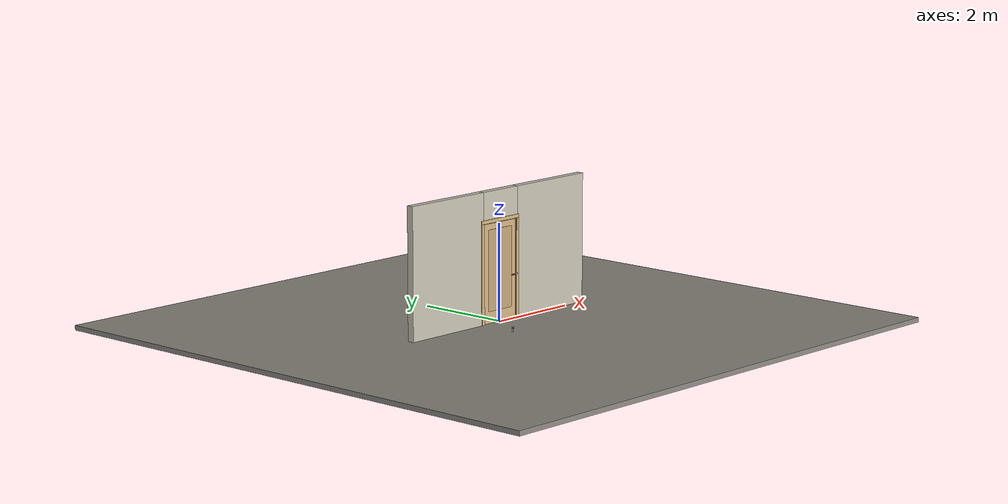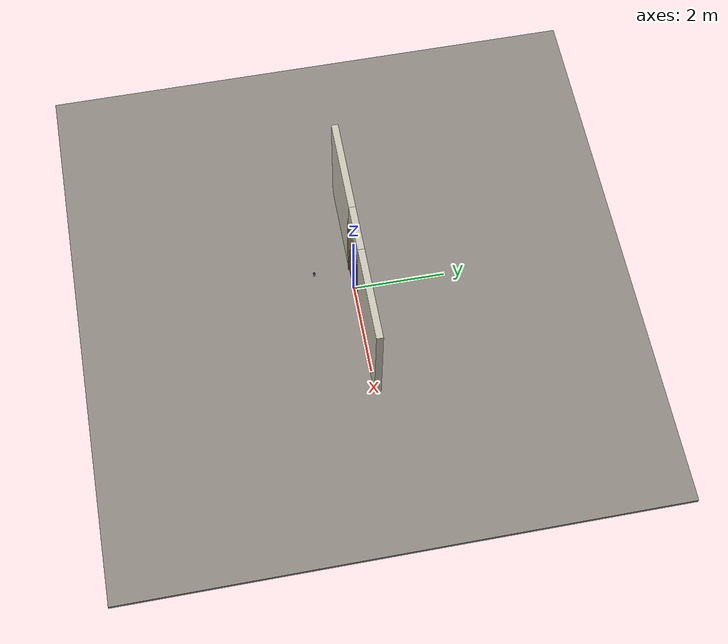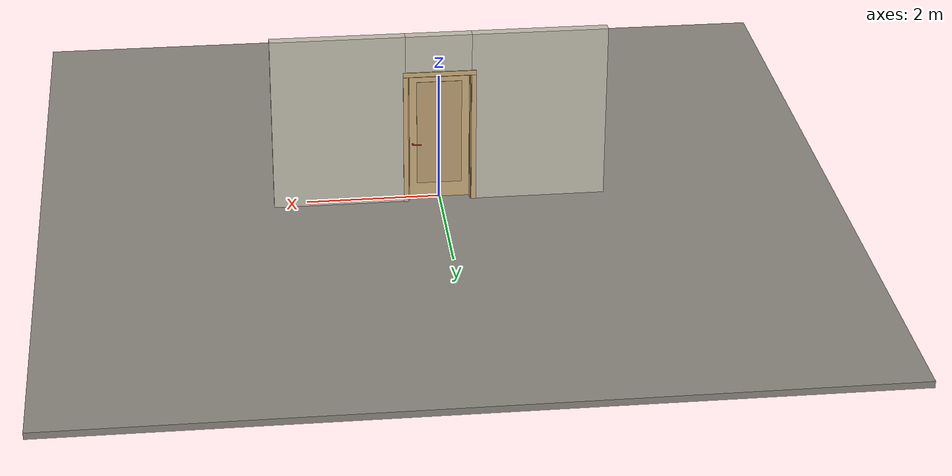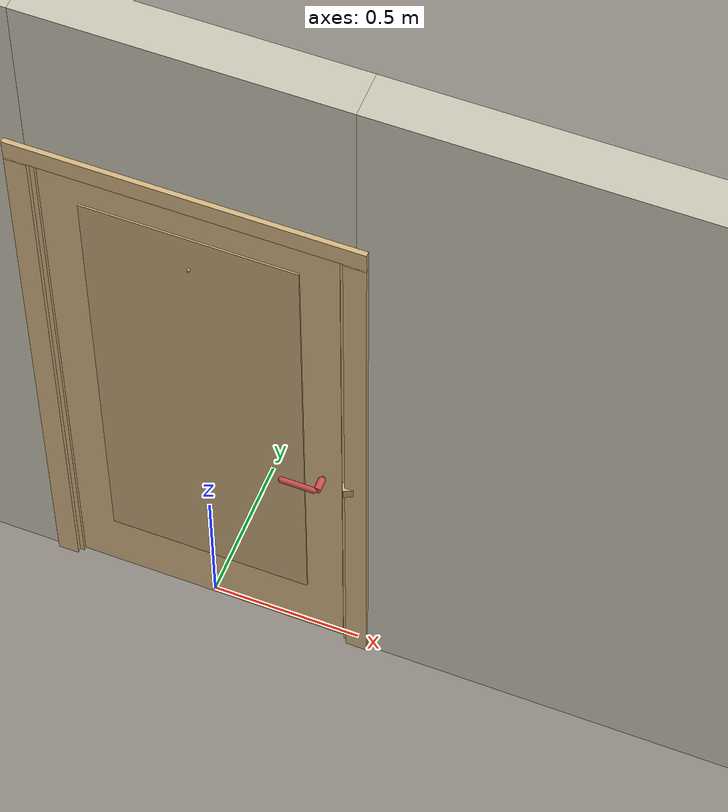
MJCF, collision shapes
<?xml version="1.0" ?>
<mujoco model="db0082_swing_single_full">
  <compiler angle="radian" meshdir="../../hardware" texturedir="../../textures" autolimits="true" inertiafromgeom="false"/>
  <option timestep="0.002" integrator="implicitfast" cone="elliptic" impratio="10" noslip_iterations="3">
    <flag multiccd="enable"/>
  </option>
  <size memory="16M"/>
  <default>
    <geom condim="4" solref="0.005 1" solimp="0.95 0.99 0.001"/>
    <joint solreflimit="0.005 1" solimplimit="0.95 0.99 0.001"/>
    <tendon solreflimit="0.005 1"/>
    <equality solref="0.002 1"/>
  </default>
  <visual>
    <headlight ambient="0.4 0.4 0.4" diffuse="0.7 0.7 0.7" specular="0.2 0.2 0.2"/>
    <quality shadowsize="4096"/>
    <map znear="0.01" zfar="60"/>
  </visual>
  <asset>
    <mesh name="hinge_e3fd49fe13" file="hinge_e3fd49fe13.obj"/>
    <mesh name="hinge_jamb_e47eb19c39" file="hinge_jamb_e47eb19c39.obj"/>
    <mesh name="lever_9f02b544cf" file="lever_9f02b544cf.obj"/>
    <mesh name="wreath_86a3f1bf8b" file="wreath_86a3f1bf8b.obj"/>
    <material name="mat_floor" rgba="0.55 0.53 0.5 1" specular="0.2" shininess="0.15" reflectance="0"/>
    <material name="mat_wall" rgba="0.78 0.76 0.7 1" specular="0.2" shininess="0.1" reflectance="0"/>
    <material name="mat_leaf" rgba="0.82 0.7 0.5 1" specular="0.2" shininess="0.45" reflectance="0"/>
    <material name="mat_leaf_panel" rgba="0.754 0.644 0.46 1" specular="0.2" shininess="0.45" reflectance="0"/>
    <material name="mat_hinge" rgba="0.65 0.66 0.68 1" specular="0.74" shininess="0.5" reflectance="0.36"/>
    <material name="mat_op_brass_antique" rgba="0.55 0.42 0.22 1" specular="0.74" shininess="0.45" reflectance="0.36"/>
    <material name="mat_trim" rgba="0.85 0.66 0.3 1" specular="0.8" shininess="0.75" reflectance="0.4"/>
    <material name="mat_bolt" rgba="0.85 0.66 0.3 1" specular="0.8" shininess="0.75" reflectance="0.4"/>
    <material name="mat_frame" rgba="0.82 0.7 0.5 1" specular="0.2" shininess="0.45" reflectance="0"/>
    <material name="mat_wreath" rgba="0.12 0.3 0.12 1" specular="0.2" shininess="0.05" reflectance="0"/>
    <material name="mat_wreath_hook" rgba="0.85 0.66 0.3 1" specular="0.8" shininess="0.75" reflectance="0.4"/>
    <material name="mat_bumper_stop" rgba="0.08 0.08 0.08 1" specular="0.2" shininess="0.1" reflectance="0"/>
    <material name="mat_stop_base" rgba="0.9 0.9 0.92 1" specular="0.8" shininess="0.9" reflectance="0.4"/>
    <texture name="skybox" type="skybox" builtin="gradient" rgb1="0.6 0.7 0.85" rgb2="0.9 0.92 0.95" width="256" height="256"/>
  </asset>
  <worldbody>
    <light name="sun" pos="1.5 -2.5 4" dir="-0.3 0.5 -0.8" directional="true" diffuse="0.8 0.8 0.8" specular="0.3 0.3 0.3" castshadow="true"/>
    <light name="fill" pos="-1.5 2.5 3" dir="0.3 -0.5 -0.7" directional="true" diffuse="0.35 0.35 0.4" castshadow="false"/>
    <camera name="robot_view" pos="0 -2.494187 1.734312" xyaxes="1 0 0 0 0.26963 0.962964" fovy="52"/>
    <camera name="far_view" pos="0 2.590187 1.734312" xyaxes="-1 0 0 0 -0.26963 0.962964" fovy="52"/>
    <camera name="iso" pos="1.932062 -2.087438 2.141063" xyaxes="0.741536 0.670913 0 -0.242917 0.268487 0.932151" fovy="46"/>
    <camera name="detail_handle" pos="0.4765 -0.8725 1.194" xyaxes="0.97561 0.219512 0 -0.070934 0.315262 0.94635" fovy="38"/>
    <geom name="floor" type="box" size="6 6 0.05" pos="0 0 -0.05" material="mat_floor" group="0" contype="1" conaffinity="1" friction="0.8 0.005 0.0001" density="2400"/>
    <geom name="wall_left" type="box" size="1.01025 0.0725 1.35" pos="-1.48975 0.048 1.35" material="mat_wall" group="0" contype="1" conaffinity="1" friction="0.6 0.005 0.0001" density="800"/>
    <geom name="wall_right" type="box" size="0.99525 0.0725 1.35" pos="1.50475 0.048 1.35" material="mat_wall" group="0" contype="1" conaffinity="1" friction="0.6 0.005 0.0001" density="800"/>
    <geom name="wall_header" type="box" size="0.4945 0.0725 0.303" pos="0.015 0.048 2.397" material="mat_wall" group="0" contype="1" conaffinity="1" friction="0.6 0.005 0.0001" density="800"/>
    <geom name="hinge_0_jamb" type="mesh" mesh="hinge_jamb_e47eb19c39" pos="-0.4575 -0.0245 0.259" material="mat_hinge" group="1" contype="0" conaffinity="0" density="7850"/>
    <geom name="hinge_1_jamb" type="mesh" mesh="hinge_jamb_e47eb19c39" pos="-0.4575 -0.0245 1.025" material="mat_hinge" group="1" contype="0" conaffinity="0" density="7850"/>
    <geom name="hinge_2_jamb" type="mesh" mesh="hinge_jamb_e47eb19c39" pos="-0.4575 -0.0245 1.861" material="mat_hinge" group="1" contype="0" conaffinity="0" density="7850"/>
    <geom name="jamb_hinge" type="box" size="0.0095 0.0725 1.0225" pos="-0.47 0.048 1.0225" material="mat_frame" group="0" contype="1" conaffinity="1" friction="0.6 0.005 0.0001" density="400"/>
    <geom name="strike_914_wall_n" type="box" size="0.0245 0.056325 0.0167" pos="0.485 0.064175 0.914" material="mat_frame" group="0" contype="1" conaffinity="1" friction="0.6 0.005 0.0001" density="400"/>
    <geom name="strike_914_wall_p" type="box" size="0.0245 0.008 0.0167" pos="0.485 -0.01585 0.914" material="mat_frame" group="0" contype="1" conaffinity="1" friction="0.6 0.005 0.0001" density="400"/>
    <geom name="strike_914_ramp" type="box" size="0.0245 0.01649 0.0167" pos="0.489636 -0.028673 0.914" quat="0.977148 0 0 0.212558" material="mat_frame" group="0" contype="1" conaffinity="1" friction="0.12 0.005 0.0001" density="400"/>
    <geom name="strike_914_back" type="box" size="0.01615 0.00785 0.0167" pos="0.49335 0 0.914" material="mat_frame" group="0" contype="1" conaffinity="1" friction="0.6 0.005 0.0001" density="400"/>
    <geom name="jamb_strike_0" type="box" size="0.0245 0.0725 0.44865" pos="0.485 0.048 0.44865" material="mat_frame" group="0" contype="1" conaffinity="1" friction="0.6 0.005 0.0001" density="400"/>
    <geom name="jamb_strike_1" type="box" size="0.0245 0.0725 0.55715" pos="0.485 0.048 1.48785" material="mat_frame" group="0" contype="1" conaffinity="1" friction="0.6 0.005 0.0001" density="400"/>
    <geom name="jamb_head" type="box" size="0.4945 0.0725 0.0095" pos="0.015 0.048 2.0545" material="mat_frame" group="0" contype="1" conaffinity="1" friction="0.6 0.005 0.0001" density="400"/>
    <geom name="head_stud" type="box" size="0.4945 0.0725 0.015" pos="0.015 0.048 2.079" material="mat_wall" group="0" contype="1" conaffinity="1" friction="0.6 0.005 0.0001" density="500"/>
    <geom name="stop_hinge" type="box" size="0.0055 0.016 1.0225" pos="-0.455 0.034 1.0225" material="mat_frame" group="0" contype="1" conaffinity="1" friction="0.6 0.005 0.0001" density="400"/>
    <geom name="stop_strike" type="box" size="0.0055 0.016 1.0225" pos="0.455 0.034 1.0225" material="mat_frame" group="0" contype="1" conaffinity="1" friction="0.6 0.005 0.0001" density="400"/>
    <geom name="stop_head" type="box" size="0.4605 0.016 0.0055" pos="0 0.034 2.0395" material="mat_frame" group="0" contype="1" conaffinity="1" friction="0.6 0.005 0.0001" density="400"/>
    <geom name="casing_l_n" type="box" size="0.035 0.008 1.032" pos="-0.5095 -0.0325 1.0225" material="mat_frame" group="2" contype="0" conaffinity="0" density="400"/>
    <geom name="casing_r_n" type="box" size="0.035 0.008 1.032" pos="0.5095 -0.0325 1.0225" material="mat_frame" group="2" contype="0" conaffinity="0" density="400"/>
    <geom name="casing_h_n" type="box" size="0.5445 0.008 0.035" pos="0 -0.0325 2.094" material="mat_frame" group="2" contype="0" conaffinity="0" density="400"/>
    <geom name="casing_l_p" type="box" size="0.035 0.008 1.032" pos="-0.5095 0.1285 1.0225" material="mat_frame" group="2" contype="0" conaffinity="0" density="400"/>
    <geom name="casing_r_p" type="box" size="0.035 0.008 1.032" pos="0.5095 0.1285 1.0225" material="mat_frame" group="2" contype="0" conaffinity="0" density="400"/>
    <geom name="casing_h_p" type="box" size="0.5445 0.008 0.035" pos="0 0.1285 2.094" material="mat_frame" group="2" contype="0" conaffinity="0" density="400"/>
    <geom name="door_stop_base" type="cylinder" size="0.022 0.003" pos="-0.4735 -0.8014 0.003" material="mat_stop_base" group="0" contype="1" conaffinity="1" friction="0.6 0.005 0.0001" density="7850"/>
    <geom name="door_stop_post" type="cylinder" size="0.012 0.0245" pos="-0.4735 -0.8014 0.0305" material="mat_stop_base" group="0" contype="1" conaffinity="1" friction="0.6 0.005 0.0001" density="7850"/>
    <geom name="door_stop_bumper" type="cylinder" size="0.022 0.02" pos="-0.4735 -0.8014 0.075" material="mat_bumper_stop" group="0" contype="1" conaffinity="1" friction="0.6 0.005 0.0001" density="1100"/>
    <site name="approach_point" pos="0 -1.5 0" quat="1 0 0 0" size="0.05" rgba="0.2 0.9 0.2 0.5" group="4"/>
    <site name="goal_point" pos="0 1.5 0" quat="1 0 0 0" size="0.05" rgba="0.2 0.9 0.2 0.5" group="4"/>
    <site name="door_plane_center" pos="0 0 1.0225" quat="1 0 0 0" size="0.02" rgba="0.2 0.9 0.2 0.5" group="4"/>
    <body name="leaf" pos="-0.4605 0 0">
      <inertial pos="0.44957 -0.003953 1.055711" mass="27.689857" quat="0.498162 0.501916 -0.500861 0.499052" diaginertia="1.9535364 9.562471073 11.496996621"/>
      <joint name="leaf_hinge" type="hinge" axis="0 0 -1" pos="0.003 -0.0245 0" limited="true" range="0 1.570796" damping="2.25611" frictionloss="0.451082" stiffness="6.6" springref="-0.409091" armature="0.02"/>
      <geom name="leaf_slab" type="box" size="0.457 0.0175 1.016" pos="0.46 0 1.025" material="mat_leaf" group="0" contype="1" conaffinity="1" friction="0.35 0.005 0.0001" density="1"/>
      <geom name="leaf_panel_0_n" type="box" size="0.33646 0.003 0.83344" pos="0.46 -0.0205 1.08596" material="mat_leaf_panel" group="1" contype="0" conaffinity="0" density="1"/>
      <geom name="leaf_panel_0_p" type="box" size="0.33646 0.003 0.83344" pos="0.46 0.0205 1.08596" material="mat_leaf_panel" group="1" contype="0" conaffinity="0" density="1"/>
      <geom name="hinge_0" type="mesh" mesh="hinge_e3fd49fe13" pos="0.003 -0.0245 0.259" material="mat_hinge" group="1" contype="0" conaffinity="0" density="7850"/>
      <geom name="hinge_1" type="mesh" mesh="hinge_e3fd49fe13" pos="0.003 -0.0245 1.025" material="mat_hinge" group="1" contype="0" conaffinity="0" density="7850"/>
      <geom name="hinge_2" type="mesh" mesh="hinge_e3fd49fe13" pos="0.003 -0.0245 1.861" material="mat_hinge" group="1" contype="0" conaffinity="0" density="7850"/>
      <geom name="leaf_latch_bolt_faceplate" type="box" size="0.0006 0.01235 0.0267" pos="0.9164 0 0.914" material="mat_bolt" group="1" contype="0" conaffinity="0" density="8500"/>
      <geom name="wreath" type="mesh" mesh="wreath_86a3f1bf8b" pos="0.46 -0.0175 1.59396" quat="0.707107 0.707107 0 0" material="mat_wreath" group="2" contype="0" conaffinity="0" density="200"/>
      <geom name="wreath_hook" type="cylinder" size="0.004 0.008" pos="0.46 -0.0245 1.78196" quat="0.707107 -0.707107 0 0" material="mat_wreath_hook" group="2" contype="0" conaffinity="0" density="8500"/>
      <site name="leaf_edge_mid" pos="0.917 0 1.016" quat="1 0 0 0" size="0.02" rgba="0.2 0.9 0.2 0.5" group="4"/>
      <body name="leaf_handle" pos="0.857 0 0.914">
        <inertial pos="-0.028779 0 0" mass="0.970196" quat="0 0.707107 0.707107 0" diaginertia="0.001765339 0.003138972 0.004726252"/>
        <joint name="leaf_handle_hinge" type="hinge" axis="0 -1 0" limited="true" range="0 0.96" damping="0.20055" frictionloss="0.046" stiffness="0.8" springref="-0.577217" armature="0.01"/>
        <geom name="leaf_handle_spindle" type="cylinder" size="0.006 0.0255" pos="0 0 0" quat="0.707107 -0.707107 0 0" material="mat_op_brass_antique" group="1" contype="0" conaffinity="0" density="7850"/>
        <geom name="leaf_handle_lever_n" type="mesh" mesh="lever_9f02b544cf" pos="0 -0.0175 0" quat="0.707107 0.707107 0 0" material="mat_op_brass_antique" group="1" contype="0" conaffinity="0" density="3000"/>
        <geom name="leaf_handle_lever_col_n" type="capsule" size="0.0095 0.053" pos="-0.0625 -0.0725 0" quat="0.707107 0 -0.707107 0" material="mat_op_brass_antique" group="3" contype="1" conaffinity="1" rgba="0.8 0.3 0.3 0.25" friction="0.7 0.01 0.0001" density="3000"/>
        <geom name="leaf_handle_hub_col_n" type="cylinder" size="0.012 0.022" pos="0 -0.0475 0" quat="0.707107 -0.707107 0 0" material="mat_op_brass_antique" group="3" contype="1" conaffinity="1" rgba="0.8 0.3 0.3 0.25" friction="0.6 0.005 0.0001" density="3000"/>
        <geom name="leaf_handle_lever_p" type="mesh" mesh="lever_9f02b544cf" pos="0 0.0175 0" quat="-0.707107 0.707107 0 0" material="mat_op_brass_antique" group="1" contype="0" conaffinity="0" density="3000"/>
        <geom name="leaf_handle_lever_col_p" type="capsule" size="0.0095 0.053" pos="-0.0625 0.0725 0" quat="0.707107 0 -0.707107 0" material="mat_op_brass_antique" group="3" contype="1" conaffinity="1" rgba="0.8 0.3 0.3 0.25" friction="0.7 0.01 0.0001" density="3000"/>
        <geom name="leaf_handle_hub_col_p" type="cylinder" size="0.012 0.022" pos="0 0.0475 0" quat="0.707107 -0.707107 0 0" material="mat_op_brass_antique" group="3" contype="1" conaffinity="1" rgba="0.8 0.3 0.3 0.25" friction="0.6 0.005 0.0001" density="3000"/>
        <site name="leaf_handle_grip_n" pos="-0.1 -0.0725 0" quat="1 0 0 0" size="0.012" rgba="0.2 0.9 0.2 0.5" group="4"/>
        <site name="leaf_handle_grip_p" pos="-0.1 0.0725 0" quat="1 0 0 0" size="0.012" rgba="0.2 0.9 0.2 0.5" group="4"/>
      </body>
      <body name="leaf_latch_bolt" pos="0.917 0 0.914">
        <inertial pos="-0.00865 0 0" mass="0.041419" quat="0.92388 -0.382683 0 0" diaginertia="0.000000798 0.000005598 0.000005598"/>
        <joint name="leaf_latch_bolt_slide" type="slide" axis="-1 0 0" limited="true" range="0 0.0127" damping="2" frictionloss="0.3" stiffness="300" springref="-0.008333" armature="0.1"/>
        <geom name="leaf_latch_bolt_capsule" type="capsule" size="0.00635 0.015" pos="-0.00865 0 0" quat="0.707107 0 0.707107 0" material="mat_bolt" group="0" contype="1" conaffinity="1" friction="0.2 0.005 0.0001" density="8500"/>
      </body>
    </body>
  </worldbody>
  <tendon>
    <fixed name="leaf_latch_bolt_coupling" limited="true" range="0 10">
      <joint joint="leaf_latch_bolt_slide" coef="1"/>
      <joint joint="leaf_handle_hinge" coef="-0.016711"/>
    </fixed>
  </tendon>
  <sensor>
    <jointpos name="leaf_hinge_pos" joint="leaf_hinge"/>
    <jointvel name="leaf_hinge_vel" joint="leaf_hinge"/>
    <jointpos name="leaf_handle_hinge_pos" joint="leaf_handle_hinge"/>
    <jointvel name="leaf_handle_hinge_vel" joint="leaf_handle_hinge"/>
    <jointpos name="leaf_latch_bolt_slide_pos" joint="leaf_latch_bolt_slide"/>
    <jointvel name="leaf_latch_bolt_slide_vel" joint="leaf_latch_bolt_slide"/>
  </sensor>
</mujoco>
